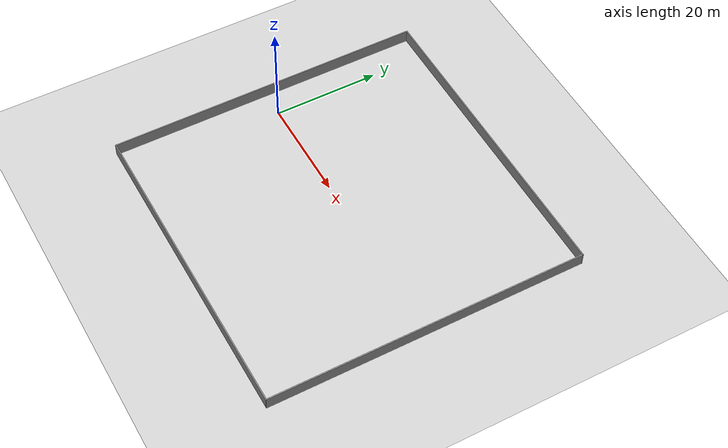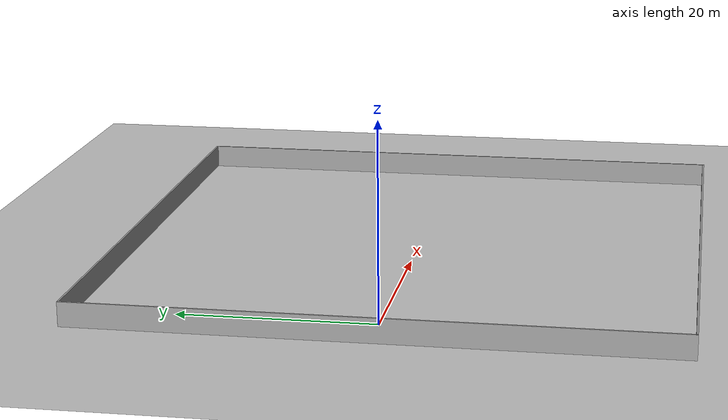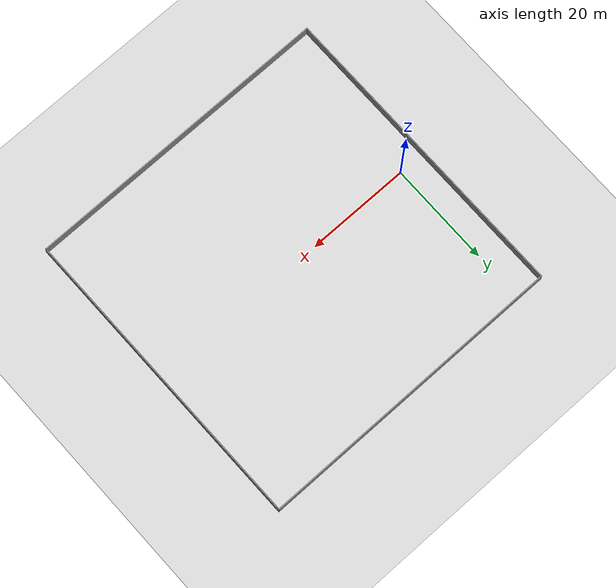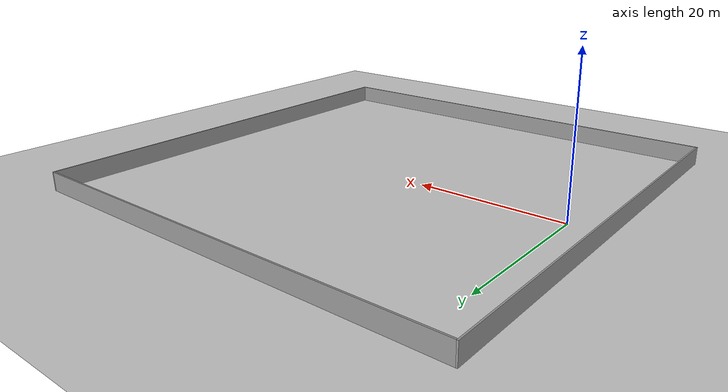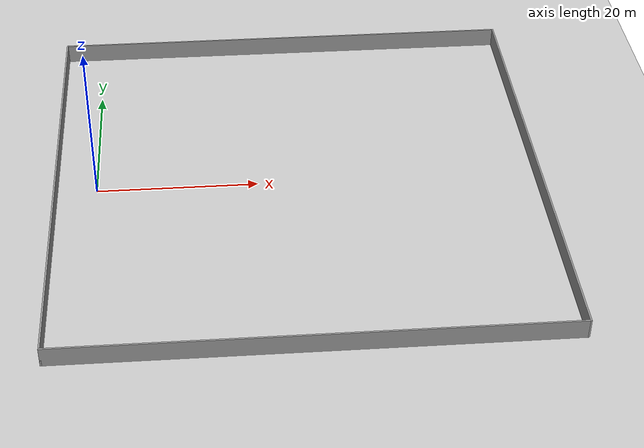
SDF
<sdf version="1.4">
 <world name="default">
  <physics type="ode">
   <gravity>0 0 -9.8</gravity>
   <ode>
    <solver><type>quick</type><iters>20</iters><sor>1.0</sor></solver>
    <constraints>
     <cfm>0.0</cfm>
     <erp>0.2</erp>
     <contact_max_correcting_vel>100.0</contact_max_correcting_vel>
     <contact_surface_layer>0.0</contact_surface_layer>
    </constraints>
   </ode>
   <max_step_size>0.001</max_step_size>
  </physics>
  <include><uri>model://sun</uri></include>
  <model name="ground_plane">
   <static>true</static>
   <link name="link">
    <pose>25.0 0.0 0.0 0 0 0</pose>
    <collision name="collision">
     <geometry><plane><normal>0 0 1</normal><size>100 100</size></plane></geometry>
     <surface><friction><ode><mu>100</mu><mu2>50</mu2></ode></friction></surface>
    </collision>
    <visual name="visual">
     <cast_shadows>false</cast_shadows>
     <geometry><plane><normal>0 0 1</normal><size>60 60</size></plane></geometry>
     <material>
      <script><uri>file://media/materials/scripts/gazebo.material</uri><name>Gazebo/Grey</name></script>
     </material>
    </visual>
   </link>
  </model>
  <model name="CHALLENGE2_ARENA">
   <link name="Wall_13">
    <collision name="Wall_13_Collision">
     <geometry><box><size>60.2 0.2 2.5</size></box></geometry>
     <pose>0 0 1.25 0 -0 0</pose>
    </collision>
    <visual name="Wall_13_Visual">
     <pose>0 0 1.25 0 -0 0</pose>
     <geometry><box><size>60.2 0.2 2.5</size></box></geometry>
     <material>
      <script><uri>file://media/materials/scripts/gazebo.material</uri><name>Gazebo/Grey</name></script>
     </material>
    </visual>
    <velocity_decay><linear>0</linear><angular>0</angular></velocity_decay>
    <pose>-5 0 0 0 0 -1.5708</pose>
   </link>
   <link name="Wall_14">
    <collision name="Wall_14_Collision">
     <geometry><box><size>60.2 0.2 2.5</size></box></geometry>
     <pose>0 0 1.25 0 -0 0</pose>
    </collision>
    <visual name="Wall_14_Visual">
     <pose>0 0 1.25 0 -0 0</pose>
     <geometry><box><size>60.2 0.2 2.5</size></box></geometry>
     <material>
      <script><uri>file://media/materials/scripts/gazebo.material</uri><name>Gazebo/Grey</name></script>
     </material>
    </visual>
    <velocity_decay><linear>0</linear><angular>0</angular></velocity_decay>
    <pose>25 -30 0 0 -0 0</pose>
   </link>
   <link name="Wall_15">
    <collision name="Wall_15_Collision">
     <geometry><box><size>60.2 0.2 2.5</size></box></geometry>
     <pose>0 0 1.25 0 -0 0</pose>
    </collision>
    <visual name="Wall_15_Visual">
     <pose>0 0 1.25 0 -0 0</pose>
     <geometry><box><size>60.2 0.2 2.5</size></box></geometry>
     <material>
      <script><uri>file://media/materials/scripts/gazebo.material</uri><name>Gazebo/Grey</name></script>
     </material>
    </visual>
    <velocity_decay><linear>0</linear><angular>0</angular></velocity_decay>
    <pose>55 0 0 0 -0 1.5708</pose>
   </link>
   <link name="Wall_16">
    <collision name="Wall_16_Collision">
     <geometry><box><size>60 0.2 2.5</size></box></geometry>
     <pose>0 0 1.25 0 -0 0</pose>
    </collision>
    <visual name="Wall_16_Visual">
     <pose>0 0 1.25 0 -0 0</pose>
     <geometry><box><size>60 0.2 2.5</size></box></geometry>
     <material>
      <script><uri>file://media/materials/scripts/gazebo.material</uri><name>Gazebo/Grey</name></script>
     </material>
    </visual>
    <velocity_decay><linear>0</linear><angular>0</angular></velocity_decay>
    <pose>25.1 30 0 0 -0 3.14159</pose>
   </link>
   <static>1</static>
  </model>
 </world>
</sdf>
